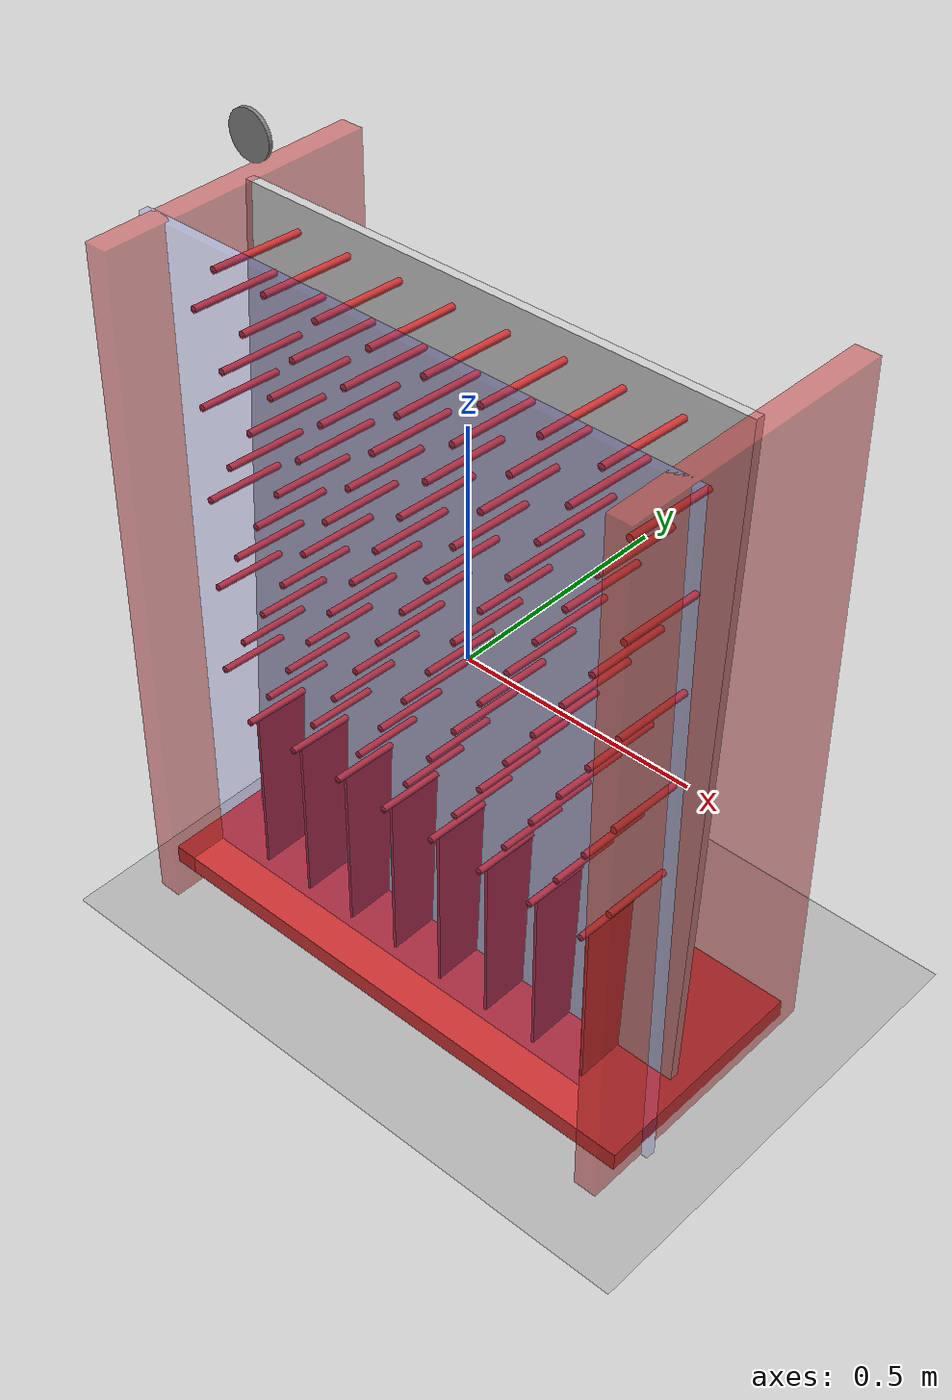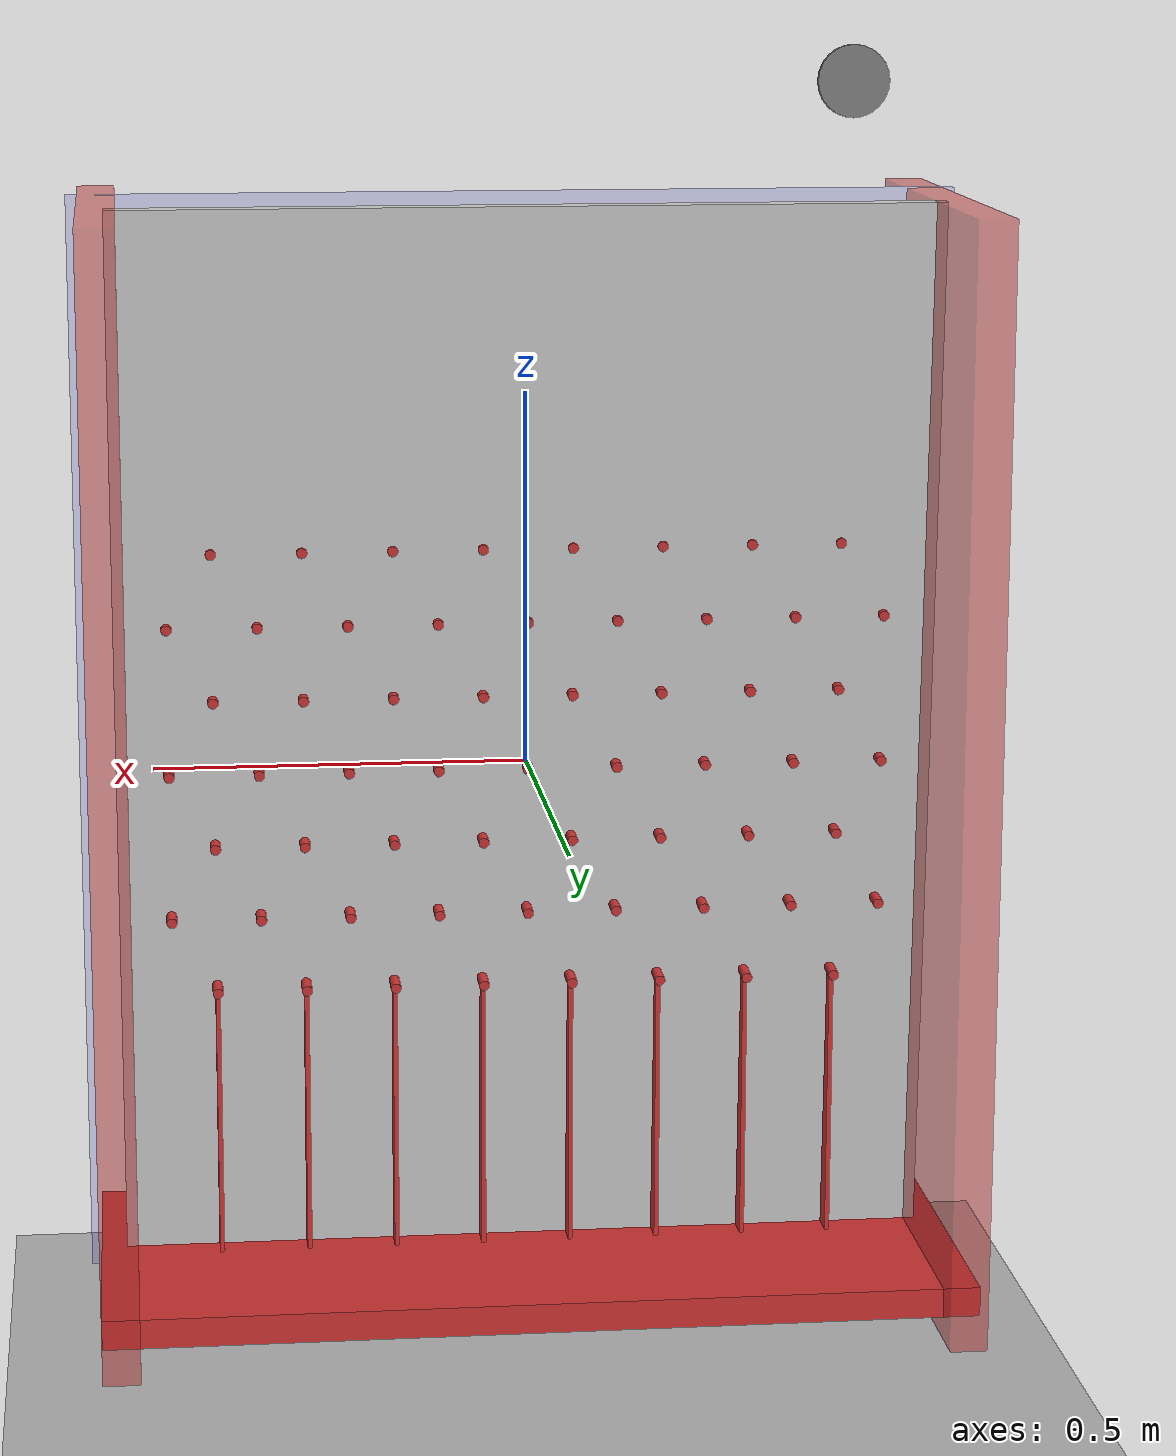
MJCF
<mujoco>
    <compiler angle="degree"/>
    <option gravity="0 0 -9.81" timestep="0.003" iterations="50" solver="Newton" jacobian="sparse" cone="elliptic" tolerance="1e-10"/>

    <default>
        <geom solimp=".9 .9 .01"/>
        <default class="peg">
            <geom mass="0.5" size="0.007 0.1" axisangle="1 0 0 87" type="cylinder" condim='1' rgba=".80 .20 .20 1"/>

        </default>

    </default>
    <asset>
        <texture type="skybox" builtin="gradient" width="128" height="128" rgb1=".4 .6 .8" rgb2="0 0 0"/>
        <texture name="texgeom" type="cube" builtin="flat" mark="cross" width="128" height="128"
            rgb1="0.6 0.6 0.6" rgb2="0.6 0.6 0.6" markrgb="1 1 1"/>
        <texture name="texplane" type="2d" builtin="checker" rgb1=".4 .4 .4" rgb2=".6 .6 .6"
            width="512" height="512"/>
        <material name='geom' texture="texgeom" texuniform="true"/>
        <material name='MatPlane' reflectance='0.3' texture="texplane" texrepeat="1 1" texuniform="true"/>
    </asset>

    <statistic extent="3"/>

    <worldbody>
        <geom pos="0 0 -.8" type="plane" size="3 3 .5" rgba=".7 .7 .7 1" material="MatPlane"/>

        <body name='plinko-token' pos='-.44 -.05 0.9'>

            <joint name="tokenx" type="slide" axis="1 0 0" limited="false" range="-.5 .5"/>
            <joint name="tokenz" type="slide" axis="0 0 1" limited="false" range="0 1"/>
            <joint name="tokenwy" type="hinge" axis="0 1 0" limited="false" range="0 1"/>

            <geom name='obj' type='cylinder' size='.048 .004' axisangle='1 0 0 90'/>
        </body>

        <body name="board" pos="0 0 0">

            <geom axisangle='1 0 0 -3' condim="3" size="0.55 0.01 0.75" rgba=".80 .80 .80 1" type="box"/>

            <body name="glass" pos="0 -.16 0">
                <geom condim="3" size="0.6 0.01 0.75" rgba=".20 .20 .80 0.05" type="box"/>
            </body>

            <!-- board -->
            <body name="base" pos="0 0 -0.7">
                <geom condim="3" size="0.585 0.25 0.02" rgba=".80 .20 .20 1" type="box"/>
            </body>

            <body name="left-base" pos="-0.56 0 0">
                <geom condim="3" size="0.025 0.3 0.75" rgba=".80 .20 .20 0.5" type="box"/>
            </body>

            <body name="right-base" pos="0.56 0 0">
                <geom condim="3" size="0.025 0.3 0.75" rgba=".80 .20 .20 0.5" type="box"/>
            </body>

            <!-- slots -->

            <body name="slot-1" pos="-.42 -.07 -.5">
                <geom condim="3" size="0.003 0.08 0.2" rgba=".80 .20 .20 1" type="box"/>
            </body>

            <body name="slot-2" pos="-.30 -.07 -.5">
                <geom condim="3" size="0.003 0.08 0.2" rgba=".80 .20 .20 1" type="box"/>
            </body>

            <body name="slot-3" pos="-.18 -.07 -.5">
                <geom condim="3" size="0.003 0.08 0.2" rgba=".80 .20 .20 1" type="box"/>
            </body>

            <body name="slot-4" pos="-.06 -.07 -.5">
                <geom condim="3" size="0.003 0.08 0.2" rgba=".80 .20 .20 1" type="box"/>
            </body>

            <body name="slot-5" pos=".06 -.07 -.5">
                <geom condim="3" size="0.003 0.08 0.2" rgba=".80 .20 .20 1" type="box"/>
            </body>

            <body name="slot-6" pos=".18 -.07 -.5">
                <geom condim="3" size="0.003 0.08 0.2" rgba=".80 .20 .20 1" type="box"/>
            </body>

            <body name="slot-7" pos=".30 -.07 -.5">
                <geom condim="3" size="0.003 0.08 0.2" rgba=".80 .20 .20 1" type="box"/>
            </body>

            <body name="slot-8" pos=".42 -.07 -.5">
                <geom condim="3" size="0.003 0.08 0.2" rgba=".80 .20 .20 1" type="box"/>
            </body>

            <!-- entry row-->
            <body name="0-peg1" pos="-.42 -.07 .7">
                <geom class="peg"/>
            </body>

            <body name="0-peg2" pos="-.30 -.07 .7">
                <geom class="peg"/>
            </body>

            <body name="0-peg3" pos="-.18 -.07 .7">
                <geom class="peg"/>
            </body>

            <body name="0-peg4" pos="-.06 -.07 .7">
                <geom class="peg"/>
            </body>

            <body name="0-peg5" pos=".06 -.07 .7">
                <geom class="peg"/>
            </body>

            <body name="0-peg6" pos=".18 -.07 .7">
                <geom class="peg"/>
            </body>

            <body name="0-peg7" pos=".30 -.07 .7">
                <geom class="peg"/>
            </body>

            <body name="0-peg8" pos=".42 -.07 .7">
                <geom class="peg"/>
            </body>

            <!-- row 1 -->
            <body name="1-peg1" pos="-.48 -.07 .6">
                <geom class="peg"/>
            </body>

            <body name="1-peg2" pos="-.36 -.07 .6">
                <geom class="peg"/>
            </body>

            <body name="1-peg3" pos="-.24 -.07 .6">
                <geom class="peg"/>
            </body>

            <body name="1-peg4" pos="-.12 -.07 .6">
                <geom class="peg"/>
            </body>

            <body name="1-peg5" pos=".0 -.07 .6">
                <geom class="peg"/>
            </body>

            <body name="1-peg6" pos=".12 -.07 .6">
                <geom class="peg"/>
            </body>

            <body name="1-peg7" pos=".24 -.07 .6">
                <geom class="peg"/>
            </body>

            <body name="1-peg8" pos=".36 -.07 .6">
                <geom class="peg"/>
            </body>

            <body name="1-peg9" pos=".48 -.07 .6">
                <geom class="peg"/>
            </body>

            <!-- row 2 -->
            <body name="2-peg1" pos="-.42 -.07 .5">
                <geom class="peg"/>
            </body>

            <body name="2-peg2" pos="-.30 -.07 .5">
                <geom class="peg"/>
            </body>

            <body name="2-peg3" pos="-.18 -.07 .5">
                <geom class="peg"/>
            </body>

            <body name="2-peg4" pos="-.06 -.07 .5">
                <geom class="peg"/>
            </body>

            <body name="2-peg5" pos=".06 -.07 .5">
                <geom class="peg"/>
            </body>

            <body name="2-peg6" pos=".18 -.07 .5">
                <geom class="peg"/>
            </body>

            <body name="2-peg7" pos=".30 -.07 .5">
                <geom class="peg"/>
            </body>

            <body name="2-peg8" pos=".42 -.07 .5">
                <geom class="peg"/>
            </body>

            <!-- row 3 -->
            <body name="3-peg1" pos="-.48 -.07 .4">
                <geom class="peg"/>
            </body>

            <body name="3-peg2" pos="-.36 -.07 .4">
                <geom class="peg"/>
            </body>

            <body name="3-peg3" pos="-.24 -.07 .4">
                <geom class="peg"/>
            </body>

            <body name="3-peg4" pos="-.12 -.07 .4">
                <geom class="peg"/>
            </body>

            <body name="3-peg5" pos=".0 -.07 .4">
                <geom class="peg"/>
            </body>

            <body name="3-peg6" pos=".12 -.07 .4">
                <geom class="peg"/>
            </body>

            <body name="3-peg7" pos=".24 -.07 .4">
                <geom class="peg"/>
            </body>

            <body name="3-peg8" pos=".36 -.07 .4">
                <geom class="peg"/>
            </body>

            <body name="3-peg9" pos=".48 -.07 .4">
                <geom class="peg"/>
            </body>

            <!-- row 4 -->
            <body name="4-peg1" pos="-.42 -.07 .3">
                <geom class="peg"/>
            </body>

            <body name="4-peg2" pos="-.30 -.07 .3">
                <geom class="peg"/>
            </body>

            <body name="4-peg3" pos="-.18 -.07 .3">
                <geom class="peg"/>
            </body>

            <body name="4-peg4" pos="-.06 -.07 .3">
                <geom class="peg"/>
            </body>

            <body name="4-peg5" pos=".06 -.07 .3">
                <geom class="peg"/>
            </body>

            <body name="4-peg6" pos=".18 -.07 .3">
                <geom class="peg"/>
            </body>

            <body name="4-peg7" pos=".30 -.07 .3">
                <geom class="peg"/>
            </body>

            <body name="4-peg8" pos=".42 -.07 .3">
                <geom class="peg"/>
            </body>

            <!-- row 5 -->
            <body name="5-peg1" pos="-.48 -.07 .2">
                <geom class="peg"/>
            </body>

            <body name="5-peg2" pos="-.36 -.07 .2">
                <geom class="peg"/>
            </body>

            <body name="5-peg3" pos="-.24 -.07 .2">
                <geom class="peg"/>
            </body>

            <body name="5-peg4" pos="-.12 -.07 .2">
                <geom class="peg"/>
            </body>

            <body name="5-peg5" pos=".0 -.07 .2">
                <geom class="peg"/>
            </body>

            <body name="5-peg6" pos=".12 -.07 .2">
                <geom class="peg"/>
            </body>

            <body name="5-peg7" pos=".24 -.07 .2">
                <geom class="peg"/>
            </body>

            <body name="5-peg8" pos=".36 -.07 .2">
                <geom class="peg"/>
            </body>

            <body name="5-peg9" pos=".48 -.07 .2">
                <geom class="peg"/>
            </body>

            <body name="6-peg1" pos="-.42 -.07 .1">
                <geom class="peg"/>
            </body>

            <!-- row 6 -->
            <body name="6-peg2" pos="-.30 -.07 .1">
                <geom class="peg"/>
            </body>

            <body name="6-peg3" pos="-.18 -.07 .1">
                <geom class="peg"/>
            </body>

            <body name="6-peg4" pos="-.06 -.07 .1">
                <geom class="peg"/>
            </body>

            <body name="6-peg5" pos=".06 -.07 .1">
                <geom class="peg"/>
            </body>

            <body name="6-peg6" pos=".18 -.07 .1">
                <geom class="peg"/>
            </body>

            <body name="6-peg7" pos=".30 -.07 .1">
                <geom class="peg"/>
            </body>

            <body name="6-peg8" pos=".42 -.07 .1">
                <geom class="peg"/>
            </body>

            <!-- row 7 -->
            <body name="7-peg1" pos="-.48 -.07 0">
                <geom class="peg"/>
            </body>

            <body name="7-peg2" pos="-.36 -.07 0">
                <geom class="peg"/>
            </body>

            <body name="7-peg3" pos="-.24 -.07 0">
                <geom class="peg"/>
            </body>

            <body name="7-peg4" pos="-.12 -.07 0">
                <geom class="peg"/>
            </body>

            <body name="7-peg5" pos=".0 -.07 0">
                <geom class="peg"/>
            </body>

            <body name="7-peg6" pos=".12 -.07 0">
                <geom class="peg"/>
            </body>

            <body name="7-peg7" pos=".24 -.07 0">
                <geom class="peg"/>
            </body>

            <body name="7-peg8" pos=".36 -.07 0">
                <geom class="peg"/>
            </body>

            <body name="7-peg9" pos=".48 -.07 0">
                <geom class="peg"/>
            </body>

            <!-- row 8 -->
            <body name="8-peg1" pos="-.42 -.07 -.1">
                <geom class="peg"/>
            </body>

            <body name="8-peg2" pos="-.30 -.07 -.1">
                <geom class="peg"/>
            </body>

            <body name="8-peg3" pos="-.18 -.07 -.1">
                <geom class="peg"/>
            </body>

            <body name="8-peg4" pos="-.06 -.07 -.1">
                <geom class="peg"/>
            </body>

            <body name="8-peg5" pos=".06 -.07 -.1">
                <geom class="peg"/>
            </body>

            <body name="8-peg6" pos=".18 -.07 -.1">
                <geom class="peg"/>
            </body>

            <body name="8-peg7" pos=".30 -.07 -.1">
                <geom class="peg"/>
            </body>

            <body name="8-peg8" pos=".42 -.07 -.1">
                <geom class="peg"/>
            </body>

            <!-- row 9 -->
            <body name="9-peg1" pos="-.48 -.07 -.2">
                <geom class="peg"/>
            </body>

            <body name="9-peg2" pos="-.36 -.07 -.2">
                <geom class="peg"/>
            </body>

            <body name="9-peg3" pos="-.24 -.07 -.2">
                <geom class="peg"/>
            </body>

            <body name="9-peg4" pos="-.12 -.07 -.2">
                <geom class="peg"/>
            </body>

            <body name="9-peg5" pos=".0 -.07 -.2">
                <geom class="peg"/>
            </body>

            <body name="9-peg6" pos=".12 -.07 -.2">
                <geom class="peg"/>
            </body>

            <body name="9-peg7" pos=".24 -.07 -.2">
                <geom class="peg"/>
            </body>

            <body name="9-peg8" pos=".36 -.07 -.2">
                <geom class="peg"/>
            </body>

            <body name="9-peg9" pos=".48 -.07 -.2">
                <geom class="peg"/>
            </body>

            <!-- row 10 -->
            <body name="10-peg1" pos="-.42 -.07 -.3">
                <geom class="peg"/>
            </body>

            <body name="10-peg2" pos="-.30 -.07 -.3">
                <geom class="peg"/>
            </body>

            <body name="10-peg3" pos="-.18 -.07 -.3">
                <geom class="peg"/>
            </body>

            <body name="10-peg4" pos="-.06 -.07 -.3">
                <geom class="peg"/>
            </body>

            <body name="10-peg5" pos=".06 -.07 -.3">
                <geom class="peg"/>
            </body>

            <body name="10-peg6" pos=".18 -.07 -.3">
                <geom class="peg"/>
            </body>

            <body name="10-peg7" pos=".30 -.07 -.3">
                <geom class="peg"/>
            </body>

            <body name="10-peg8" pos=".42 -.07 -.3">
                <geom class="peg"/>
            </body>
        </body>
    </worldbody>
</mujoco>
